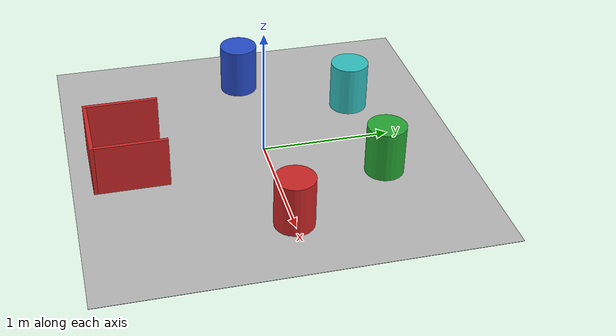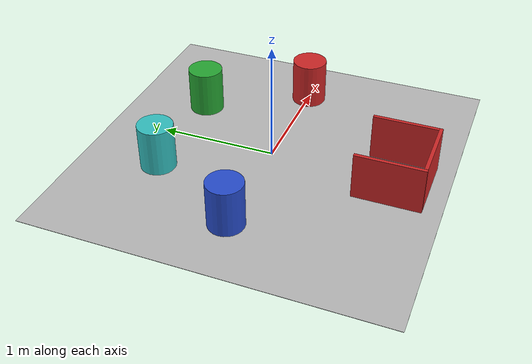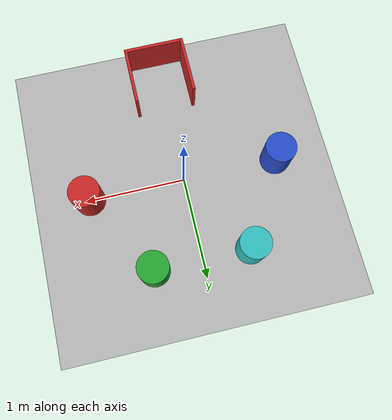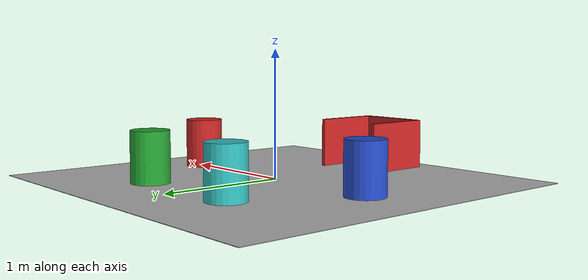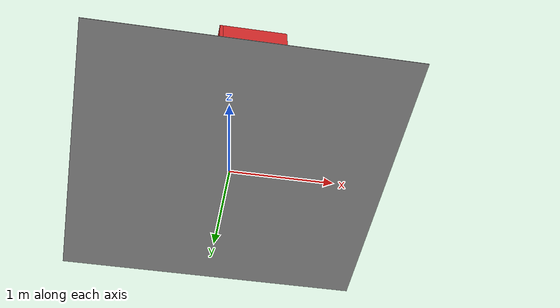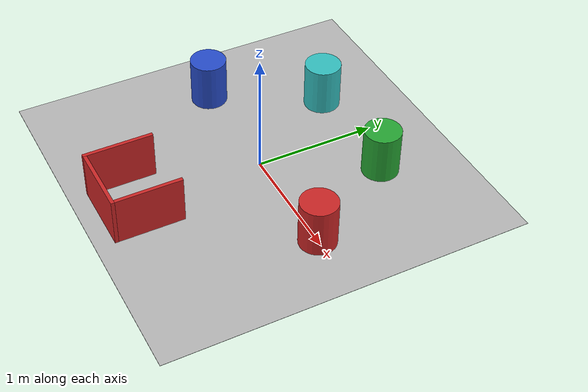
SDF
<?xml version="1.0"?>
<sdf version="1.4">
<model name="detection">
  <static>true</static>
    <link name="floor">
      <collision name="collision">
        <geometry>
          <plane>
            <normal>0 0 1</normal>
            <size>3.0 3.0</size>
          </plane>
        </geometry>
        <surface>
          <friction>
            <ode>
              <mu>100</mu>
              <mu2>50</mu2>
            </ode>
          </friction>
        </surface>
      </collision>
      <visual name="visual">
        <cast_shadows>false</cast_shadows>
        <geometry>
          <plane>
            <normal>0 0 1</normal>
            <size>3.0 3.0</size>
          </plane>
        </geometry>
        <material>
          <script>
            <uri>model://detection/materials/scripts</uri>
            <uri>model://detection/materials/textures</uri>
            <name>DetectionFloor/Image</name>
          </script>
        </material>
      </visual>
    </link>
    <link name='BCN_LL'>
      <pose frame=''>-0.95 0 0.2 0 0 0</pose>
      <collision name='coll'>
        <geometry>
          <cylinder>
            <radius>0.15</radius>
            <length>0.4</length>
          </cylinder>
        </geometry>
        <max_contacts>10</max_contacts>
      </collision>
      <visual name='vis'>
        <geometry>
          <cylinder>
            <radius>0.15</radius>
            <length>0.4</length>
          </cylinder>
        </geometry>
        <material>
          <script>
            <uri>file://media/materials/scripts/gazebo.material</uri>
            <name>Gazebo/Blue</name>
          </script>
        </material>
      </visual>
    </link>
    <link name='BCN_L'>
      <pose frame=''>-0.475 0.82273 0.2 0 0 0</pose>
      <collision name='coll'>
        <geometry>
          <cylinder>
            <radius>0.15</radius>
            <length>0.4</length>
          </cylinder>
        </geometry>
        <max_contacts>10</max_contacts>
      </collision>
      <visual name='vis'>
        <geometry>
          <cylinder>
            <radius>0.15</radius>
            <length>0.4</length>
          </cylinder>
        </geometry>
        <material>
          <script>
            <uri>file://media/materials/scripts/gazebo.material</uri>
            <name>Gazebo/Turquoise</name>
          </script>
        </material>
      </visual>
    </link>
    <link name='BCN_R'>
      <pose frame=''>0.475 0.82273 0.2 0 0 0</pose>
      <collision name='coll'>
        <geometry>
          <cylinder>
            <radius>0.15</radius>
            <length>0.4</length>
          </cylinder>
        </geometry>
        <max_contacts>10</max_contacts>
      </collision>
      <visual name='vis'>
        <geometry>
          <cylinder>
            <radius>0.15</radius>
            <length>0.4</length>
          </cylinder>
        </geometry>
        <material>
          <script>
            <uri>file://media/materials/scripts/gazebo.material</uri>
            <name>Gazebo/Green</name>
          </script>
        </material>
      </visual>
    </link>
    <link name='BCN_RR'>
      <pose frame=''>0.95 0 0.2 0 0 0</pose>
      <collision name='coll'>
        <geometry>
          <cylinder>
            <radius>0.15</radius>
            <length>0.4</length>
          </cylinder>
        </geometry>
        <max_contacts>10</max_contacts>
      </collision>
      <visual name='vis'>
        <geometry>
          <cylinder>
            <radius>0.15</radius>
            <length>0.4</length>
          </cylinder>
        </geometry>
        <material>
          <script>
            <uri>file://media/materials/scripts/gazebo.material</uri>
            <name>Gazebo/Red</name>
          </script>
        </material>
      </visual>
    </link>

    <link name='start_zone'>
      <pose frame=''>0 -1.06114 0.2 0 0 1.571</pose>
      <collision name='Right_Wall_Collision'>
        <geometry>
          <box>
            <size>0.57 0.03 0.4</size>
          </box>
        </geometry>
        <pose frame=''>0 0.2850 0 0 0 0</pose>
      </collision>
      <visual name='Right_Wall_Visual'>
        <pose frame=''>0 0.2850 0 0 0 0</pose>
        <geometry>
          <box>
            <size>0.57 0.03 0.4</size>
          </box>
        </geometry>
        <material>
          <script>
            <uri>file://media/materials/scripts/gazebo.material</uri>
            <name>Gazebo/Red</name>
          </script>
        </material>
      </visual>
      <collision name='Back_Wall_Collision'>
        <geometry>
          <box>
            <size>0.57 0.03 0.4</size>
          </box>
        </geometry>
        <pose frame=''>-0.27 -0.015 0 0 0 1.571</pose>
      </collision>
      <visual name='Back_Wall_Visual'>
        <pose frame=''>-0.27 -0.015 0 0 0 1.571</pose>
        <geometry>
          <box>
            <size>0.57 0.03 0.4</size>
          </box>
        </geometry>
        <material>
          <script>
            <uri>file://media/materials/scripts/gazebo.material</uri>
            <name>Gazebo/Red</name>
          </script>
        </material>
      </visual>
      <collision name='Left_Wall_Collision'>
        <geometry>
          <box>
            <size>0.54 0.03 0.4</size>
          </box>
        </geometry>
        <pose frame=''>0.015 -0.285 0 0 0 0</pose>
      </collision>
      <visual name='Left_Wall_Visual'>
        <pose frame=''>0.015 -0.285 0 0 0 0</pose>
        <geometry>
          <box>
            <size>0.54 0.03 0.4</size>
          </box>
        </geometry>
        <material>
          <script>
            <uri>file://media/materials/scripts/gazebo.material</uri>
            <name>Gazebo/Red</name>
          </script>
        </material>
      </visual>
    </link>
  </model>
</sdf>
